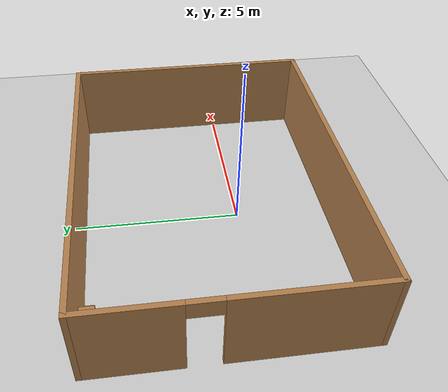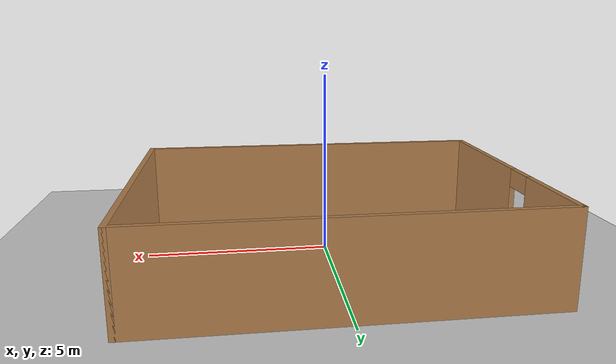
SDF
<sdf version="1.7">
 <world name="default">
  <light name="sun" type="directional">
   <pose>0 0 10 0 -0 0</pose>
   <diffuse>0.8 0.8 0.8 1</diffuse>
   <specular>0.2 0.2 0.2 1</specular>
   <attenuation>
    <range>1000</range>
    <constant>0.9</constant>
    <linear>0.01</linear>
    <quadratic>0.001</quadratic>
   </attenuation>
   <direction>-0.5 0.1 -0.9</direction>
   <spot><inner_angle>0</inner_angle><outer_angle>0</outer_angle><falloff>0</falloff></spot>
  </light>
  <model name="ground_plane">
   <static>1</static>
   <link name="link">
    <collision name="collision">
     <geometry><plane><normal>0 0 1</normal><size>100 100</size></plane></geometry>
     <surface><friction><ode><mu>100</mu><mu2>50</mu2></ode></friction></surface>
    </collision>
    <visual name="visual">
     <cast_shadows>0</cast_shadows>
     <geometry><plane><normal>0 0 1</normal><size>100 100</size></plane></geometry>
     <material>
      <script><uri>file://media/materials/scripts/gazebo.material</uri><name>Gazebo/Grey</name></script>
     </material>
    </visual>
   </link>
  </model>
  <gravity>0 0 -9.8</gravity>
  <magnetic_field>6e-06 2.3e-05 -4.2e-05</magnetic_field>
  <atmosphere type="adiabatic"/>
  <physics type="ode">
   <max_step_size>0.001</max_step_size>
   <real_time_factor>1</real_time_factor>
   <real_time_update_rate>1000</real_time_update_rate>
  </physics>
  <scene><ambient>0.4 0.4 0.4 1</ambient><background>0.7 0.7 0.7 1</background><shadows>1</shadows></scene>
  <audio><device>default</device></audio>
  <spherical_coordinates>
   <surface_model>EARTH_WGS84</surface_model>
   <latitude_deg>0</latitude_deg>
   <longitude_deg>0</longitude_deg>
   <elevation>0</elevation>
   <heading_deg>0</heading_deg>
  </spherical_coordinates>
  <model name="test_world">
   <pose>0.033203 0.953525 0 0 -0 0</pose>
   <link name="Wall_10">
    <collision name="Wall_10_Collision">
     <geometry><box><size>10.32 0.15 2.5</size></box></geometry>
     <pose>0 0 1.25 0 -0 0</pose>
    </collision>
    <visual name="Wall_10_Visual">
     <pose>0 0 1.25 0 -0 0</pose>
     <geometry><box><size>10.32 0.15 2.5</size></box></geometry>
     <material>
      <script><uri>file://media/materials/scripts/gazebo.material</uri><name>Gazebo/Wood</name></script>
      <ambient>1 1 1 1</ambient>
     </material>
     <meta><layer>0</layer></meta>
    </visual>
    <pose>0 -3.8 0 0 -0 3.14159</pose>
   </link>
   <link name="Wall_5">
    <pose>-5.08498 0 0 0 -0 1.5708</pose>
    <visual name="Wall_5_Visual_0">
     <pose>-1.78879 0 1.25 0 -0 0</pose>
     <geometry><box><size>4.17242 0.15 2.5</size></box></geometry>
     <material>
      <script><uri>file://media/materials/scripts/gazebo.material</uri><name>Gazebo/Wood</name></script>
      <ambient>1 1 1 1</ambient>
     </material>
     <meta><layer>0</layer></meta>
    </visual>
    <collision name="Wall_5_Collision_0">
     <geometry><box><size>4.17242 0.15 2.5</size></box></geometry>
     <pose>-1.78879 0 1.25 0 -0 0</pose>
    </collision>
    <visual name="Wall_5_Visual_1">
     <pose>2.53621 0 1.25 0 -0 0</pose>
     <geometry><box><size>2.67758 0.15 2.5</size></box></geometry>
     <material>
      <script><uri>file://media/materials/scripts/gazebo.material</uri><name>Gazebo/Wood</name></script>
      <ambient>1 1 1 1</ambient>
     </material>
     <meta><layer>0</layer></meta>
    </visual>
    <collision name="Wall_5_Collision_1">
     <geometry><box><size>2.67758 0.15 2.5</size></box></geometry>
     <pose>2.53621 0 1.25 0 -0 0</pose>
    </collision>
    <visual name="Wall_5_Visual_2">
     <pose>0.747416 0 2.25 0 -0 0</pose>
     <geometry><box><size>0.9 0.15 0.5</size></box></geometry>
     <material>
      <script><uri>file://media/materials/scripts/gazebo.material</uri><name>Gazebo/Wood</name></script>
      <ambient>1 1 1 1</ambient>
     </material>
     <meta><layer>0</layer></meta>
    </visual>
    <collision name="Wall_5_Collision_2">
     <geometry><box><size>0.9 0.15 0.5</size></box></geometry>
     <pose>0.747416 0 2.25 0 -0 0</pose>
    </collision>
   </link>
   <link name="Wall_6">
    <collision name="Wall_6_Collision">
     <geometry><box><size>10.32 0.15 2.5</size></box></geometry>
     <pose>0 0 1.25 0 -0 0</pose>
    </collision>
    <visual name="Wall_6_Visual">
     <pose>0 0 1.25 0 -0 0</pose>
     <geometry><box><size>10.32 0.15 2.5</size></box></geometry>
     <material>
      <script><uri>file://media/materials/scripts/gazebo.material</uri><name>Gazebo/Wood</name></script>
      <ambient>1 1 1 1</ambient>
     </material>
     <meta><layer>0</layer></meta>
    </visual>
    <pose>0 3.8 0 0 -0 0</pose>
   </link>
   <link name="Wall_9">
    <collision name="Wall_9_Collision">
     <geometry><box><size>7.75 0.15 2.5</size></box></geometry>
     <pose>0 0 1.25 0 -0 0</pose>
    </collision>
    <visual name="Wall_9_Visual">
     <pose>0 0 1.25 0 -0 0</pose>
     <geometry><box><size>7.75 0.15 2.5</size></box></geometry>
     <material>
      <script><uri>file://media/materials/scripts/gazebo.material</uri><name>Gazebo/Wood</name></script>
      <ambient>1 1 1 1</ambient>
     </material>
     <meta><layer>0</layer></meta>
    </visual>
    <pose>5.08498 0 0 0 -0 -1.5708</pose>
   </link>
   <static>1</static>
  </model>
  <model name="bookshelf">
   <static>1</static>
   <link name="link">
    <inertial><mass>1</mass></inertial>
    <collision name="back">
     <pose>0 0.005 0.6 0 -0 0</pose>
     <geometry><box><size>0.9 0.01 1.2</size></box></geometry>
    </collision>
    <visual name="visual1">
     <pose>0 0.005 0.6 0 -0 0</pose>
     <geometry><box><size>0.9 0.01 1.2</size></box></geometry>
     <material>
      <script><uri>file://media/materials/scripts/gazebo.material</uri><name>Gazebo/Wood</name></script>
     </material>
    </visual>
    <collision name="left_side">
     <pose>0.45 -0.195 0.6 0 -0 0</pose>
     <geometry><box><size>0.02 0.4 1.2</size></box></geometry>
    </collision>
    <visual name="visual2">
     <pose>0.45 -0.195 0.6 0 -0 0</pose>
     <geometry><box><size>0.02 0.4 1.2</size></box></geometry>
     <material>
      <script><uri>file://media/materials/scripts/gazebo.material</uri><name>Gazebo/Wood</name></script>
     </material>
    </visual>
    <collision name="right_side">
     <pose>-0.45 -0.195 0.6 0 -0 0</pose>
     <geometry><box><size>0.02 0.4 1.2</size></box></geometry>
    </collision>
    <visual name="visual3">
     <pose>-0.45 -0.195 0.6 0 -0 0</pose>
     <geometry><box><size>0.02 0.4 1.2</size></box></geometry>
     <material>
      <script><uri>file://media/materials/scripts/gazebo.material</uri><name>Gazebo/Wood</name></script>
     </material>
    </visual>
    <collision name="bottom">
     <pose>0 -0.195 0.03 0 -0 0</pose>
     <geometry><box><size>0.88 0.4 0.06</size></box></geometry>
    </collision>
    <visual name="visual4">
     <pose>0 -0.195 0.03 0 -0 0</pose>
     <geometry><box><size>0.88 0.4 0.06</size></box></geometry>
     <material>
      <script><uri>file://media/materials/scripts/gazebo.material</uri><name>Gazebo/Wood</name></script>
     </material>
    </visual>
    <collision name="top">
     <pose>0 -0.195 1.19 0 -0 0</pose>
     <geometry><box><size>0.88 0.4 0.02</size></box></geometry>
    </collision>
    <visual name="visual5">
     <pose>0 -0.195 1.19 0 -0 0</pose>
     <geometry><box><size>0.88 0.4 0.02</size></box></geometry>
     <material>
      <script><uri>file://media/materials/scripts/gazebo.material</uri><name>Gazebo/Wood</name></script>
     </material>
    </visual>
    <collision name="low_shelf">
     <pose>0 -0.195 0.43 0 -0 0</pose>
     <geometry><box><size>0.88 0.4 0.02</size></box></geometry>
    </collision>
    <visual name="visual6">
     <pose>0 -0.195 0.43 0 -0 0</pose>
     <geometry><box><size>0.88 0.4 0.02</size></box></geometry>
     <material>
      <script><uri>file://media/materials/scripts/gazebo.material</uri><name>Gazebo/Wood</name></script>
     </material>
    </visual>
    <collision name="high_shelf">
     <pose>0 -0.195 0.8 0 -0 0</pose>
     <geometry><box><size>0.88 0.4 0.02</size></box></geometry>
    </collision>
    <visual name="visual7">
     <pose>0 -0.195 0.8 0 -0 0</pose>
     <geometry><box><size>0.88 0.4 0.02</size></box></geometry>
     <material>
      <script><uri>file://media/materials/scripts/gazebo.material</uri><name>Gazebo/Wood</name></script>
     </material>
    </visual>
   </link>
   <pose>-4.32538 4.64236 0 0 -0 0</pose>
  </model>
 </world>
</sdf>
